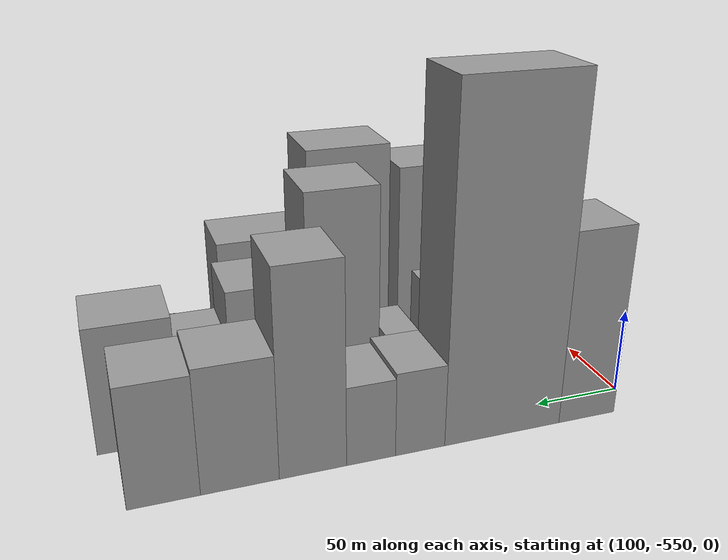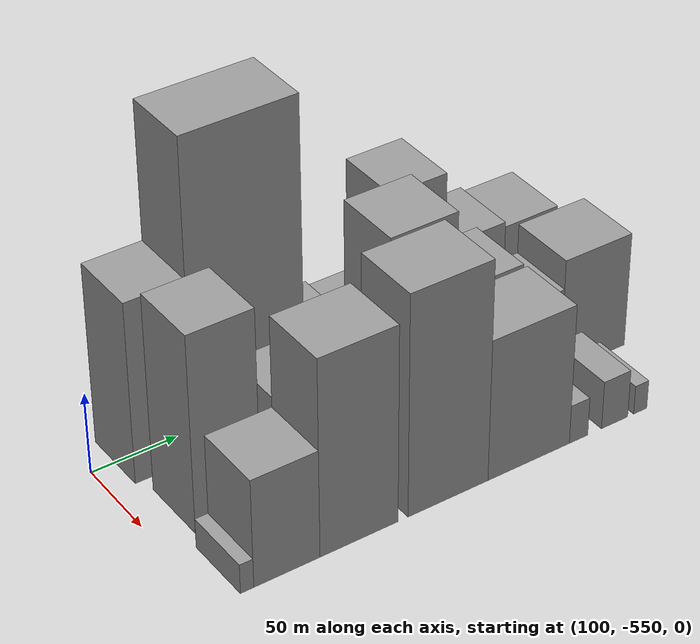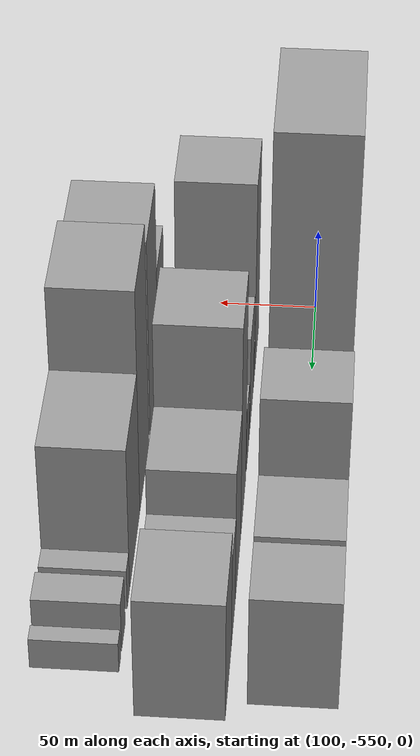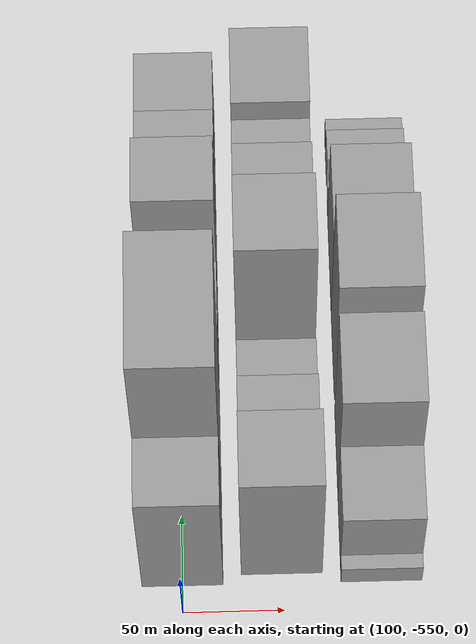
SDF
<sdf version="1.6">
 <world name="default">
  <model name="building_1">
   <static>1</static>
   <pose>100.0000 -518.8748 0 0.000000 0.000000 0.000000</pose>
   <link name="link">
    <pose>0 0 55.50 0 0 0</pose>
    <collision name="collision"><geometry><box><size>40.0000 34.2505 111.0000</size></box></geometry></collision>
    <visual name="visual">
     <cast_shadows>0</cast_shadows>
     <geometry><box><size>40.0000 34.2505 111.0000</size></box></geometry>
     <material>
      <script>
       <uri>model://grey_wall/materials/scripts</uri>
       <uri>model://grey_wall/materials/textures</uri>
       <name>vrc/grey_wall</name>
      </script>
     </material>
    </visual>
   </link>
  </model>
  <model name="building_2">
   <static>1</static>
   <pose>100.0000 -468.1727 0 0.000000 0.000000 0.000000</pose>
   <link name="link">
    <pose>0 0 96.00 0 0 0</pose>
    <collision name="collision"><geometry><box><size>40.0000 67.1537 192.0000</size></box></geometry></collision>
    <visual name="visual">
     <cast_shadows>0</cast_shadows>
     <geometry><box><size>40.0000 67.1537 192.0000</size></box></geometry>
     <material>
      <script>
       <uri>model://grey_wall/materials/scripts</uri>
       <uri>model://grey_wall/materials/textures</uri>
       <name>vrc/grey_wall</name>
      </script>
     </material>
    </visual>
   </link>
  </model>
  <model name="building_3">
   <static>1</static>
   <pose>100.0000 -420.9306 0 0.000000 0.000000 0.000000</pose>
   <link name="link">
    <pose>0 0 24.00 0 0 0</pose>
    <collision name="collision"><geometry><box><size>40.0000 27.3303 48.0000</size></box></geometry></collision>
    <visual name="visual">
     <cast_shadows>0</cast_shadows>
     <geometry><box><size>40.0000 27.3303 48.0000</size></box></geometry>
     <material>
      <script>
       <uri>model://grey_wall/materials/scripts</uri>
       <uri>model://grey_wall/materials/textures</uri>
       <name>vrc/grey_wall</name>
      </script>
     </material>
    </visual>
   </link>
  </model>
  <model name="building_4">
   <static>1</static>
   <pose>100.0000 -394.1880 0 0.000000 0.000000 0.000000</pose>
   <link name="link">
    <pose>0 0 22.50 0 0 0</pose>
    <collision name="collision"><geometry><box><size>40.0000 26.1550 45.0000</size></box></geometry></collision>
    <visual name="visual">
     <cast_shadows>0</cast_shadows>
     <geometry><box><size>40.0000 26.1550 45.0000</size></box></geometry>
     <material>
      <script>
       <uri>model://grey_wall/materials/scripts</uri>
       <uri>model://grey_wall/materials/textures</uri>
       <name>vrc/grey_wall</name>
      </script>
     </material>
    </visual>
   </link>
  </model>
  <model name="building_5">
   <static>1</static>
   <pose>100.0000 -363.7829 0 0.000000 0.000000 0.000000</pose>
   <link name="link">
    <pose>0 0 57.00 0 0 0</pose>
    <collision name="collision"><geometry><box><size>40.0000 34.6551 114.0000</size></box></geometry></collision>
    <visual name="visual">
     <cast_shadows>0</cast_shadows>
     <geometry><box><size>40.0000 34.6551 114.0000</size></box></geometry>
     <material>
      <script>
       <uri>model://grey_wall/materials/scripts</uri>
       <uri>model://grey_wall/materials/textures</uri>
       <name>vrc/grey_wall</name>
      </script>
     </material>
    </visual>
   </link>
  </model>
  <model name="building_6">
   <static>1</static>
   <pose>100.0000 -327.1159 0 0.000000 0.000000 0.000000</pose>
   <link name="link">
    <pose>0 0 34.50 0 0 0</pose>
    <collision name="collision"><geometry><box><size>40.0000 38.6789 69.0000</size></box></geometry></collision>
    <visual name="visual">
     <cast_shadows>0</cast_shadows>
     <geometry><box><size>40.0000 38.6789 69.0000</size></box></geometry>
     <material>
      <script>
       <uri>model://grey_wall/materials/scripts</uri>
       <uri>model://grey_wall/materials/textures</uri>
       <name>vrc/grey_wall</name>
      </script>
     </material>
    </visual>
   </link>
  </model>
  <model name="building_7">
   <static>1</static>
   <pose>100.0000 -290.4375 0 0.000000 0.000000 0.000000</pose>
   <link name="link">
    <pose>0 0 33.00 0 0 0</pose>
    <collision name="collision"><geometry><box><size>40.0000 34.6778 66.0000</size></box></geometry></collision>
    <visual name="visual">
     <cast_shadows>0</cast_shadows>
     <geometry><box><size>40.0000 34.6778 66.0000</size></box></geometry>
     <material>
      <script>
       <uri>model://grey_wall/materials/scripts</uri>
       <uri>model://grey_wall/materials/textures</uri>
       <name>vrc/grey_wall</name>
      </script>
     </material>
    </visual>
   </link>
  </model>
  <model name="building_34">
   <static>1</static>
   <pose>149.0000 -512.0264 0 0.000000 0.000000 0.000000</pose>
   <link name="link">
    <pose>0 0 60.00 0 0 0</pose>
    <collision name="collision"><geometry><box><size>40.0000 37.9473 120.0000</size></box></geometry></collision>
    <visual name="visual">
     <cast_shadows>0</cast_shadows>
     <geometry><box><size>40.0000 37.9473 120.0000</size></box></geometry>
     <material>
      <script>
       <uri>model://grey_wall/materials/scripts</uri>
       <uri>model://grey_wall/materials/textures</uri>
       <name>vrc/grey_wall</name>
      </script>
     </material>
    </visual>
   </link>
  </model>
  <model name="building_35">
   <static>1</static>
   <pose>149.0000 -487.8754 0 0.000000 0.000000 0.000000</pose>
   <link name="link">
    <pose>0 0 12.00 0 0 0</pose>
    <collision name="collision"><geometry><box><size>40.0000 10.3546 24.0000</size></box></geometry></collision>
    <visual name="visual">
     <cast_shadows>0</cast_shadows>
     <geometry><box><size>40.0000 10.3546 24.0000</size></box></geometry>
     <material>
      <script>
       <uri>model://grey_wall/materials/scripts</uri>
       <uri>model://grey_wall/materials/textures</uri>
       <name>vrc/grey_wall</name>
      </script>
     </material>
    </visual>
   </link>
  </model>
  <model name="building_36">
   <static>1</static>
   <pose>149.0000 -466.2713 0 0.000000 0.000000 0.000000</pose>
   <link name="link">
    <pose>0 0 30.00 0 0 0</pose>
    <collision name="collision"><geometry><box><size>40.0000 32.8538 60.0000</size></box></geometry></collision>
    <visual name="visual">
     <cast_shadows>0</cast_shadows>
     <geometry><box><size>40.0000 32.8538 60.0000</size></box></geometry>
     <material>
      <script>
       <uri>model://grey_wall/materials/scripts</uri>
       <uri>model://grey_wall/materials/textures</uri>
       <name>vrc/grey_wall</name>
      </script>
     </material>
    </visual>
   </link>
  </model>
  <model name="building_37">
   <static>1</static>
   <pose>149.0000 -445.6407 0 0.000000 0.000000 0.000000</pose>
   <link name="link">
    <pose>0 0 10.50 0 0 0</pose>
    <collision name="collision"><geometry><box><size>40.0000 8.4073 21.0000</size></box></geometry></collision>
    <visual name="visual">
     <cast_shadows>0</cast_shadows>
     <geometry><box><size>40.0000 8.4073 21.0000</size></box></geometry>
     <material>
      <script>
       <uri>model://grey_wall/materials/scripts</uri>
       <uri>model://grey_wall/materials/textures</uri>
       <name>vrc/grey_wall</name>
      </script>
     </material>
    </visual>
   </link>
  </model>
  <model name="building_38">
   <static>1</static>
   <pose>149.0000 -431.5151 0 0.000000 0.000000 0.000000</pose>
   <link name="link">
    <pose>0 0 19.50 0 0 0</pose>
    <collision name="collision"><geometry><box><size>40.0000 19.8440 39.0000</size></box></geometry></collision>
    <visual name="visual">
     <cast_shadows>0</cast_shadows>
     <geometry><box><size>40.0000 19.8440 39.0000</size></box></geometry>
     <material>
      <script>
       <uri>model://grey_wall/materials/scripts</uri>
       <uri>model://grey_wall/materials/textures</uri>
       <name>vrc/grey_wall</name>
      </script>
     </material>
    </visual>
   </link>
  </model>
  <model name="building_39">
   <static>1</static>
   <pose>149.0000 -395.4635 0 0.000000 0.000000 0.000000</pose>
   <link name="link">
    <pose>0 0 64.50 0 0 0</pose>
    <collision name="collision"><geometry><box><size>40.0000 40.2590 129.0000</size></box></geometry></collision>
    <visual name="visual">
     <cast_shadows>0</cast_shadows>
     <geometry><box><size>40.0000 40.2590 129.0000</size></box></geometry>
     <material>
      <script>
       <uri>model://grey_wall/materials/scripts</uri>
       <uri>model://grey_wall/materials/textures</uri>
       <name>vrc/grey_wall</name>
      </script>
     </material>
    </visual>
   </link>
  </model>
  <model name="building_40">
   <static>1</static>
   <pose>149.0000 -354.4820 0 0.000000 0.000000 0.000000</pose>
   <link name="link">
    <pose>0 0 40.50 0 0 0</pose>
    <collision name="collision"><geometry><box><size>40.0000 41.7041 81.0000</size></box></geometry></collision>
    <visual name="visual">
     <cast_shadows>0</cast_shadows>
     <geometry><box><size>40.0000 41.7041 81.0000</size></box></geometry>
     <material>
      <script>
       <uri>model://grey_wall/materials/scripts</uri>
       <uri>model://grey_wall/materials/textures</uri>
       <name>vrc/grey_wall</name>
      </script>
     </material>
    </visual>
   </link>
  </model>
  <model name="building_41">
   <static>1</static>
   <pose>149.0000 -319.8575 0 0.000000 0.000000 0.000000</pose>
   <link name="link">
    <pose>0 0 27.00 0 0 0</pose>
    <collision name="collision"><geometry><box><size>40.0000 27.5447 54.0000</size></box></geometry></collision>
    <visual name="visual">
     <cast_shadows>0</cast_shadows>
     <geometry><box><size>40.0000 27.5447 54.0000</size></box></geometry>
     <material>
      <script>
       <uri>model://grey_wall/materials/scripts</uri>
       <uri>model://grey_wall/materials/textures</uri>
       <name>vrc/grey_wall</name>
      </script>
     </material>
    </visual>
   </link>
  </model>
  <model name="building_42">
   <static>1</static>
   <pose>149.0000 -284.5072 0 0.000000 0.000000 0.000000</pose>
   <link name="link">
    <pose>0 0 36.00 0 0 0</pose>
    <collision name="collision"><geometry><box><size>40.0000 43.1559 72.0000</size></box></geometry></collision>
    <visual name="visual">
     <cast_shadows>0</cast_shadows>
     <geometry><box><size>40.0000 43.1559 72.0000</size></box></geometry>
     <material>
      <script>
       <uri>model://grey_wall/materials/scripts</uri>
       <uri>model://grey_wall/materials/textures</uri>
       <name>vrc/grey_wall</name>
      </script>
     </material>
    </visual>
   </link>
  </model>
  <model name="building_65">
   <static>1</static>
   <pose>198.0000 -532.2519 0 0.000000 0.000000 0.000000</pose>
   <link name="link">
    <pose>0 0 9.00 0 0 0</pose>
    <collision name="collision"><geometry><box><size>40.0000 7.4963 18.0000</size></box></geometry></collision>
    <visual name="visual">
     <cast_shadows>0</cast_shadows>
     <geometry><box><size>40.0000 7.4963 18.0000</size></box></geometry>
     <material>
      <script>
       <uri>model://grey_wall/materials/scripts</uri>
       <uri>model://grey_wall/materials/textures</uri>
       <name>vrc/grey_wall</name>
      </script>
     </material>
    </visual>
   </link>
  </model>
  <model name="building_66">
   <static>1</static>
   <pose>198.0000 -509.6199 0 0.000000 0.000000 0.000000</pose>
   <link name="link">
    <pose>0 0 33.00 0 0 0</pose>
    <collision name="collision"><geometry><box><size>40.0000 37.7678 66.0000</size></box></geometry></collision>
    <visual name="visual">
     <cast_shadows>0</cast_shadows>
     <geometry><box><size>40.0000 37.7678 66.0000</size></box></geometry>
     <material>
      <script>
       <uri>model://grey_wall/materials/scripts</uri>
       <uri>model://grey_wall/materials/textures</uri>
       <name>vrc/grey_wall</name>
      </script>
     </material>
    </visual>
   </link>
  </model>
  <model name="building_67">
   <static>1</static>
   <pose>198.0000 -467.7939 0 0.000000 0.000000 0.000000</pose>
   <link name="link">
    <pose>0 0 60.00 0 0 0</pose>
    <collision name="collision"><geometry><box><size>40.0000 45.8842 120.0000</size></box></geometry></collision>
    <visual name="visual">
     <cast_shadows>0</cast_shadows>
     <geometry><box><size>40.0000 45.8842 120.0000</size></box></geometry>
     <material>
      <script>
       <uri>model://grey_wall/materials/scripts</uri>
       <uri>model://grey_wall/materials/textures</uri>
       <name>vrc/grey_wall</name>
      </script>
     </material>
    </visual>
   </link>
  </model>
  <model name="building_68">
   <static>1</static>
   <pose>198.0000 -414.4557 0 0.000000 0.000000 0.000000</pose>
   <link name="link">
    <pose>0 0 67.50 0 0 0</pose>
    <collision name="collision"><geometry><box><size>40.0000 48.7921 135.0000</size></box></geometry></collision>
    <visual name="visual">
     <cast_shadows>0</cast_shadows>
     <geometry><box><size>40.0000 48.7921 135.0000</size></box></geometry>
     <material>
      <script>
       <uri>model://grey_wall/materials/scripts</uri>
       <uri>model://grey_wall/materials/textures</uri>
       <name>vrc/grey_wall</name>
      </script>
     </material>
    </visual>
   </link>
  </model>
  <model name="building_69">
   <static>1</static>
   <pose>198.0000 -364.2869 0 0.000000 0.000000 0.000000</pose>
   <link name="link">
    <pose>0 0 43.50 0 0 0</pose>
    <collision name="collision"><geometry><box><size>40.0000 51.5457 87.0000</size></box></geometry></collision>
    <visual name="visual">
     <cast_shadows>0</cast_shadows>
     <geometry><box><size>40.0000 51.5457 87.0000</size></box></geometry>
     <material>
      <script>
       <uri>model://grey_wall/materials/scripts</uri>
       <uri>model://grey_wall/materials/textures</uri>
       <name>vrc/grey_wall</name>
      </script>
     </material>
    </visual>
   </link>
  </model>
  <model name="building_70">
   <static>1</static>
   <pose>198.0000 -332.5673 0 0.000000 0.000000 0.000000</pose>
   <link name="link">
    <pose>0 0 12.00 0 0 0</pose>
    <collision name="collision"><geometry><box><size>40.0000 11.8934 24.0000</size></box></geometry></collision>
    <visual name="visual">
     <cast_shadows>0</cast_shadows>
     <geometry><box><size>40.0000 11.8934 24.0000</size></box></geometry>
     <material>
      <script>
       <uri>model://grey_wall/materials/scripts</uri>
       <uri>model://grey_wall/materials/textures</uri>
       <name>vrc/grey_wall</name>
      </script>
     </material>
    </visual>
   </link>
  </model>
  <model name="building_71">
   <static>1</static>
   <pose>198.0000 -309.0231 0 0.000000 0.000000 0.000000</pose>
   <link name="link">
    <pose>0 0 15.00 0 0 0</pose>
    <collision name="collision"><geometry><box><size>40.0000 17.1951 30.0000</size></box></geometry></collision>
    <visual name="visual">
     <cast_shadows>0</cast_shadows>
     <geometry><box><size>40.0000 17.1951 30.0000</size></box></geometry>
     <material>
      <script>
       <uri>model://grey_wall/materials/scripts</uri>
       <uri>model://grey_wall/materials/textures</uri>
       <name>vrc/grey_wall</name>
      </script>
     </material>
    </visual>
   </link>
  </model>
  <model name="building_72">
   <static>1</static>
   <pose>198.0000 -292.0791 0 0.000000 0.000000 0.000000</pose>
   <link name="link">
    <pose>0 0 9.00 0 0 0</pose>
    <collision name="collision"><geometry><box><size>40.0000 8.6929 18.0000</size></box></geometry></collision>
    <visual name="visual">
     <cast_shadows>0</cast_shadows>
     <geometry><box><size>40.0000 8.6929 18.0000</size></box></geometry>
     <material>
      <script>
       <uri>model://grey_wall/materials/scripts</uri>
       <uri>model://grey_wall/materials/textures</uri>
       <name>vrc/grey_wall</name>
      </script>
     </material>
    </visual>
   </link>
  </model>
 </world>
</sdf>
